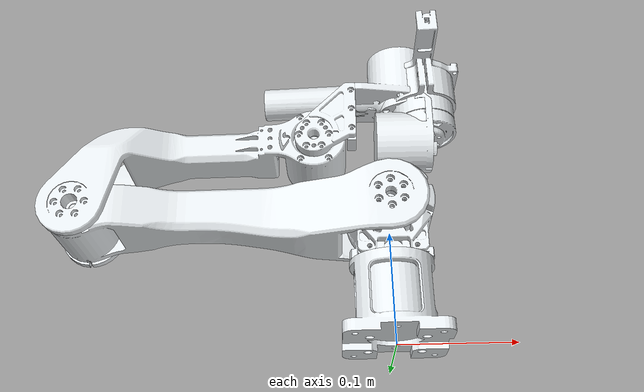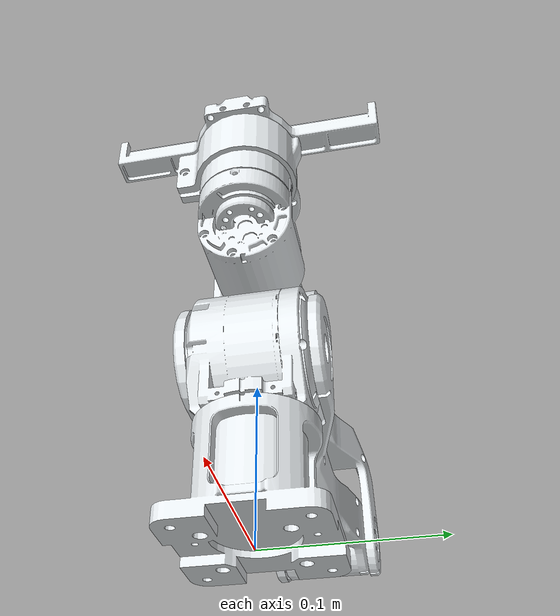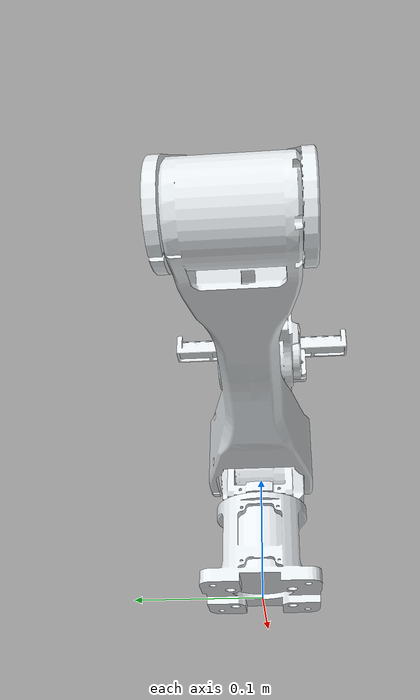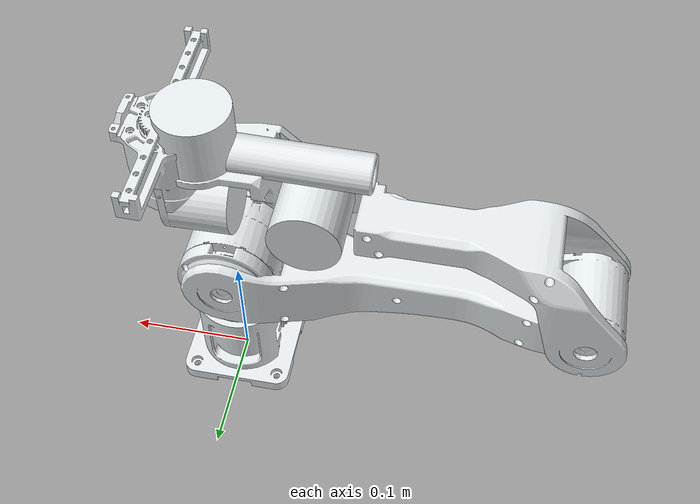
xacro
<?xml version="1.0" encoding="utf-8"?>
<!-- This URDF was automatically created by SolidWorks to URDF Exporter!
     Modified for ROS 2 (gazebo_ros2_control) -->
<robot
  name="y1"
  xmlns:xacro="http://ros.org/wiki/xacro">

  <link name="world"/>
  <joint name="fixed_base_joint" type="fixed">
    <origin
      xyz="0 0 0"
      rpy="0 0 0" />
    <parent link="world"/>
    <child link="base_link"/>
    <axis
      xyz="0 0 1" />
  </joint>

  <!-- ================= Base Link ================= -->
  <link name="base_link">
    <inertial>
      <origin
        xyz="-9.09789029626031E-05 -1.00838762111356E-06 0.0341142783974825"
        rpy="0 0 0" />
      <mass
        value="0.630484112037129" />
      <inertia
        ixx="0.000410475542409659"
        ixy="6.62504499788967E-08"
        ixz="2.20725015722797E-07"
        iyy="0.000409696540187415"
        iyz="-9.52578419911164E-09"
        izz="0.000488804326955829" />
    </inertial>
    <visual>
      <origin
        xyz="0 0 0"
        rpy="0 0 0" />
      <geometry>
        <mesh
          filename="file://$(find y1_description)/meshes/base_link.STL" />
      </geometry>
      <material
        name="">
        <color
          rgba="0.898039215686275 0.917647058823529 0.929411764705882 1" />
      </material>
    </visual>
    <collision>
      <origin
        xyz="0 0 0"
        rpy="0 0 0" />
      <geometry>
        <mesh
          filename="file://$(find y1_description)/meshes/base_link.STL" />
      </geometry>
    </collision>
  </link>

  <!-- ================= Joint 1 & Link 1 ================= -->
  <link name="link1">
    <inertial>
      <origin
        xyz="0.000681166801672071 -0.00046232914455336 0.045774892481422"
        rpy="0 0 0" />
      <mass
        value="0.465086237348566" />
      <inertia
        ixx="0.000229226849289421"
        ixy="6.51443398285894E-09"
        ixz="4.13823216869872E-08"
        iyy="0.000349392243512686"
        iyz="4.09909327547663E-06"
        izz="0.000228246849171451" />
    </inertial>
    <visual>
      <origin
        xyz="0 0 0"
        rpy="0 0 0" />
      <geometry>
        <mesh
          filename="file://$(find y1_description)/meshes/link1.STL" />
      </geometry>
      <material
        name="">
        <color
          rgba="0.898039215686275 0.917647058823529 0.929411764705882 1" />
      </material>
    </visual>
    <collision>
      <origin
        xyz="0 0 0"
        rpy="0 0 0" />
      <geometry>
        <mesh
          filename="file://$(find y1_description)/meshes/link1.STL" />
      </geometry>
    </collision>
  </link>
  <joint name="joint1" type="revolute">
    <origin
      xyz="0 0 0.06675"
      rpy="0 0 0" />
    <parent link="base_link" />
    <child link="link1" />
    <axis xyz="0 0 1" />
    <limit
      lower="-2.79"
      upper="2.79"
      effort="30"
      velocity="5" />
  </joint>

  <!-- ================= Joint 2 & Link 2 ================= -->
  <link name="link2">
    <inertial>
      <origin
        xyz="-0.18883363836199 -0.00103696749691735 -0.000652233498703338"
        rpy="0 0 0" />
      <mass
        value="1.00848298846255" />
      <inertia
        ixx="0.000410794336332579"
        ixy="-8.40217278690792E-05"
        ixz="8.54409137580295E-06"
        iyy="0.0060417092412649"
        iyz="-2.44381601939707E-07"
        izz="0.00611040782664147" />
    </inertial>
    <visual>
      <origin
        xyz="0 0 0"
        rpy="0 0 0" />
      <geometry>
        <mesh
          filename="file://$(find y1_description)/meshes/link2.STL" />
      </geometry>
      <material
        name="">
        <color
          rgba="0.898039215686275 0.917647058823529 0.929411764705882 1" />
      </material>
    </visual>
    <collision>
      <origin
        xyz="0 0 0"
        rpy="0 0 0" />
      <geometry>
        <mesh
          filename="file://$(find y1_description)/meshes/link2.STL" />
      </geometry>
    </collision>
  </link>
  <joint name="joint2" type="revolute">
    <origin
      xyz="0.00075 0 0.055"
      rpy="1.5707963267949 0 0" />
    <parent link="link1" />
    <child link="link2" />
    <axis xyz="0 0 1" />
    <limit
      lower="-3.14"
      upper="0"
      effort="100"
      velocity="5" />
  </joint>

  <!-- ================= Joint 3 & Link 3 ================= -->
  <link name="link3">
    <inertial>
      <origin
        xyz="0.133032369395304 0.0530016058529144 0.000290607464783963"
        rpy="0 0 0" />
      <mass
        value="0.839664047451371" />
      <inertia
        ixx="0.000602602152841581"
        ixy="0.000475019651698254"
        ixz="4.78547824051497E-06"
        iyy="0.00179992027196969"
        iyz="2.90178956983618E-06"
        izz="0.00208247690008721" />
    </inertial>
    <visual>
      <origin
        xyz="0 0 0"
        rpy="0 0 0" />
      <geometry>
        <mesh
          filename="file://$(find y1_description)/meshes/link3.STL" />
      </geometry>
      <material
        name="">
        <color
          rgba="0.898039215686275 0.917647058823529 0.929411764705882 1" />
      </material>
    </visual>
    <collision>
      <origin
        xyz="0 0 0"
        rpy="0 0 0" />
      <geometry>
        <mesh
          filename="file://$(find y1_description)/meshes/link3.STL" />
      </geometry>
    </collision>
  </link>
  <joint name="joint3" type="revolute">
    <origin
      xyz="-0.28 0 0"
      rpy="0 0 0" />
    <parent link="link2" />
    <child link="link3" />
    <axis xyz="0 0 1" />
    <limit
      lower="0"
      upper="3.14"
      effort="30"
      velocity="5" />
  </joint>

  <!-- ================= Joint 4 & Link 4 ================= -->
  <link name="link4">
    <inertial>
      <origin
        xyz="0.0666890671297201 0.061249505361484 0.00493164049114361"
        rpy="0 0 0" />
      <mass
        value="0.455192806560725" />
      <inertia
        ixx="0.000176582732613137"
        ixy="2.15495918248381E-05"
        ixz="-5.61631637175522E-06"
        iyy="0.000211179169445067"
        iyz="-5.37410070664354E-06"
        izz="0.000207766320179744" />
    </inertial>
    <visual>
      <origin
        xyz="0 0 0"
        rpy="0 0 0" />
      <geometry>
        <mesh
          filename="file://$(find y1_description)/meshes/link4.STL" />
      </geometry>
      <material
        name="">
        <color
          rgba="0.898039215686275 0.917647058823529 0.929411764705882 1" />
      </material>
    </visual>
    <collision>
      <origin
        xyz="0 0 0"
        rpy="0 0 0" />
      <geometry>
        <mesh
          filename="file://$(find y1_description)/meshes/link4.STL" />
      </geometry>
    </collision>
  </link>
  <joint name="joint4" type="revolute">
    <origin
      xyz="0.215000000000004 0.0630000000000073 0"
      rpy="0 0 0" />
    <parent link="link3" />
    <child link="link4" />
    <axis xyz="0 0 1" />
    <limit
      lower="-2.145"
      upper="1.413"
      effort="10"
      velocity="20" />
  </joint>

  <!-- ================= Joint 5 & Link 5 ================= -->
  <link name="link5">
    <inertial>
      <origin
        xyz="0.00248530581728849 1.71803824630881E-05 0.0400785531860572"
        rpy="0 0 0" />
      <mass
        value="0.373508569742983" />
      <inertia
        ixx="0.00016414068497646"
        ixy="1.01562762133299E-07"
        ixz="8.98033278270026E-06"
        iyy="0.000150227046495623"
        iyz="7.2756432239469E-07"
        izz="0.000141442797294447" />
    </inertial>
    <visual>
      <origin
        xyz="0 0 0"
        rpy="0 0 0" />
      <geometry>
        <mesh
          filename="file://$(find y1_description)/meshes/link5.STL" />
      </geometry>
      <material
        name="">
        <color
          rgba="0.898039215686275 0.917647058823529 0.929411764705882 1" />
      </material>
    </visual>
    <collision>
      <origin
        xyz="0 0 0"
        rpy="0 0 0" />
      <geometry>
        <mesh
          filename="file://$(find y1_description)/meshes/link5.STL" />
      </geometry>
    </collision>
  </link>
  <joint name="joint5" type="revolute">
    <origin
      xyz="0.0799999999999998 0.0519999999999981 0.000249997832942123"
      rpy="1.5707963267949 0 0" />
    <parent link="link4" />
    <child link="link5" />
    <axis xyz="0 0 1" />
    <limit
      lower="-1.482"
      upper="1.482"
      effort="10"
      velocity="20" />
  </joint>

  <!-- ================= Joint 6 & Link 6 ================= -->
  <link name="link6">
    <inertial>
      <origin
        xyz="0.0108106656274518 0.000127504395052592 0.00016010488602905"
        rpy="0 0 0" />
      <mass
        value="0.0724468602058996" />
      <inertia
        ixx="3.15031267100887E-05"
        ixy="-1.31150970829828E-08"
        ixz="-1.64301978495266E-08"
        iyy="1.66634761480036E-05"
        iyz="1.49361456762624E-07"
        izz="1.66897035808186E-05" />
    </inertial>
    <visual>
      <origin
        xyz="0 0 0"
        rpy="0 0 0" />
      <geometry>
        <mesh
          filename="file://$(find y1_description)/meshes/link6.STL" />
      </geometry>
      <material
        name="">
        <color
          rgba="0.898039215686275 0.917647058823529 0.929411764705882 1" />
      </material>
    </visual>
    <collision>
      <origin
        xyz="0 0 0"
        rpy="0 0 0" />
      <geometry>
        <mesh
          filename="file://$(find y1_description)/meshes/link6.STL" />
      </geometry>
    </collision>
  </link>
  <joint name="joint6" type="revolute">
    <origin
      xyz="0.0235 0 0.0440000000000001"
      rpy="-3.14159265330655 0 0" />
    <parent link="link5" />
    <child link="link6" />
    <axis xyz="1 0 0" />
    <limit
      lower="-2.529"
      upper="2.529"
      effort="10"
      velocity="20" />
  </joint>

  <ros2_control name="GazeboSystem" type="system">
      <hardware>
          <plugin>gazebo_ros2_control/GazeboSystem</plugin>
      </hardware>
      <joint name="joint1">
          <command_interface name="position">
              <param name="min">-1</param>
              <param name="max">1</param>
          </command_interface>
          <state_interface name="position">
              <param name="initial_value">0.0</param>
          </state_interface>
          <state_interface name="velocity"/>
      </joint>
      <joint name="joint2">
          <command_interface name="position">
              <param name="min">-1</param>
              <param name="max">1</param>
          </command_interface>
          <state_interface name="position">
              <param name="initial_value">0.0</param>
          </state_interface>
          <state_interface name="velocity"/>
      </joint>
      <joint name="joint3">
          <command_interface name="position">
              <param name="min">-1</param>
              <param name="max">1</param>
          </command_interface>
          <state_interface name="position">
              <param name="initial_value">0.0</param>
          </state_interface>
          <state_interface name="velocity"/>
      </joint>
      <joint name="joint4">
          <command_interface name="position">
              <param name="min">-1</param>
              <param name="max">1</param>
          </command_interface>
          <state_interface name="position">
              <param name="initial_value">0.1</param>
          </state_interface>
          <state_interface name="velocity"/>
      </joint>
      <joint name="joint5">
          <command_interface name="position">
              <param name="min">-1</param>
              <param name="max">1</param>
          </command_interface>
          <state_interface name="position">
              <param name="initial_value">0.0</param>
          </state_interface>
          <state_interface name="velocity"/>
      </joint>
      <joint name="joint6">
          <command_interface name="position">
              <param name="min">-1</param>
              <param name="max">1</param>
          </command_interface>
          <state_interface name="position">
              <param name="initial_value">0.0</param>
          </state_interface>
          <state_interface name="velocity"/>
      </joint>
  </ros2_control>

<!-- gazebo -->
  <gazebo>
    <plugin name="gazebo_ros2_control" filename="libgazebo_ros2_control.so">
        <parameters>$(find y1_gazebo)/config/y1_no_gripper_controllers.yaml</parameters>
        <robot_param_node>robot_state_publisher</robot_param_node>
    </plugin>
  </gazebo>

</robot>
